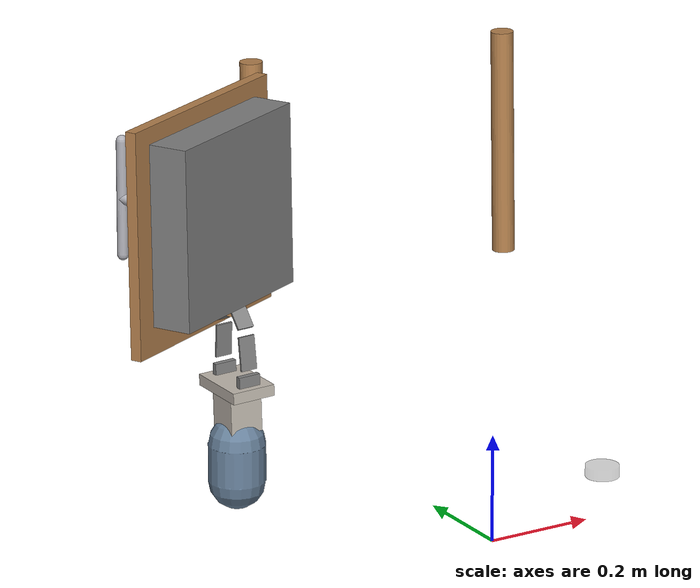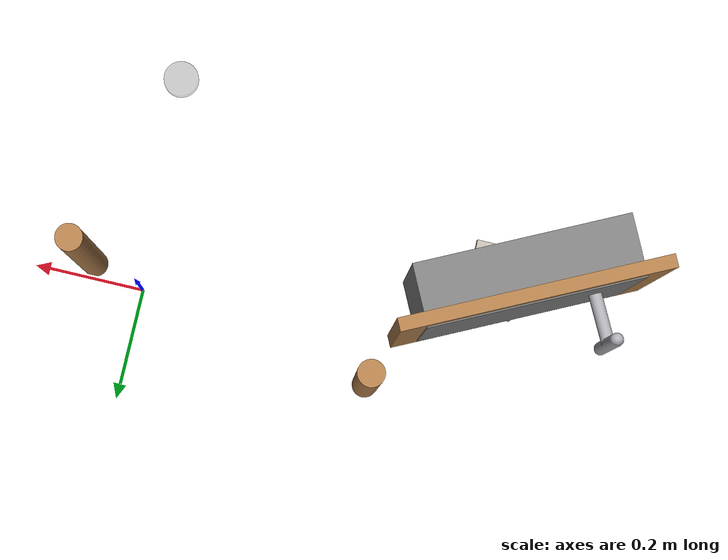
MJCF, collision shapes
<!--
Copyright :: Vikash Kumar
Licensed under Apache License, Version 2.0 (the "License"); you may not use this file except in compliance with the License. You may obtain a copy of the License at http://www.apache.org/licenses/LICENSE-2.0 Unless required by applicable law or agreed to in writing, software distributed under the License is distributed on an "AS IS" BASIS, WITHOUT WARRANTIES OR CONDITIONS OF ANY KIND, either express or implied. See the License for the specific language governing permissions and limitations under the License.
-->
<mujoco model='ADROIT-door(v1.5)'>

    <!-- ======= WORLD ======= -->
    <worldbody>
        <light directional='false' diffuse='.7 .7 .7' specular='0.03 0.03 0.03' pos='-1 -1.0 4.0' dir='1 1.0 -4'/>
        <camera name="fixed" pos="0.9 -0.7 0.7" quat="0.92388 0.382683 0 0" />
        <!-- Camera for the VIL paper -->
        <camera name="vil_camera" pos="0 -1.2 1.2" quat="0.92388 0.382683 0 0" />

        <!-- ======= MOCAP ======= -->
        <body name="vive_tracker" pos="0 -0.35 0.25" mocap="true">
            <inertial pos="0 0 0" mass="0.064" diaginertia="1.70667e-05 1.70667e-05 1.70667e-05" />
            <geom size="0.03 0.01" type="cylinder" contype="0" conaffinity="0" group="3" rgba="0.3 0.3 0.3 0.3" />
        </body>

        <!-- ======= HAND ======= -->
        <body name="forearm" pos="-0.59 -0.11 0.015" euler="0 0 0">
            <inertial pos="0 0 0" mass="0.4" />
            <joint name="ARRz" pos="0 0 0" axis="0 0 -1" range="0 100" damping="100" stiffness="100" armature="1"/>
            <joint name="slide_down" pos="0 0 0" axis="0 0 1" type="slide" range="-0.07 0" damping="100" stiffness="100" armature="1" springref="0.2"/>
            <geom name="V_forearm" class="D_Vizual" pos="0 -.01 .181" euler="0 0 -1.57"  mesh="forearm_simple" />
            <geom name="C_forearm1" class="DC_Hand" size="0.05 0.033" pos="0 0 0.29" type="capsule" rgba="0.4 0.5 0.6 0.1" />

            <!-- ======= Adroit ======= -->
            <include file="wrench_model.xml"/>
        </body>

        <!-- ======= Satellite ======= -->
        <body name="satelite" pos="0.2 0.97 -0.9" euler="2.33 4.6 3.14" >
            <inertial pos="-0.207339 0.1435293 0.547376" quat="0.982037 -0.0160006 0 -0.188007" mass="4" diaginertia="0.01 0.01 0.0075" />
            <geom name="Satellite" class="Satellite" pos="0 -.5 .2" euler="10 10 -11.57"  mesh="Satellite" size="0.05 0.25"/>

            <body name="frame" pos="-0.107339 0.0435293 0.447376" user="1001 0 2002 -0.4 -0.1 0.252 0 0.3 0.45" axisangle="0 0 1 -0.8">
            <geom size="0.02 0.2" pos="1.68 -0.88 0.23" type="cylinder" material="MatWood" euler="-0.1 4.63 0"/>
            <geom size="0.02 0.2" pos="1.72 -0.93 -0.23" type="cylinder" material="MatWood" euler="-0.1 4.63 0"/>
            <body name="door" pos="1.7 -0.9 0" euler="-0.1 4.63 0">
                <body name="door_main" pos="0.4 -0.2 0" euler="0 0 2.5">
                <geom size="0.2 0.01 0.2" type="box" friction="1 1 1" material="MatWood" />
                <body name="latch" pos="-0.2 0.05 -0.025" euler="0.15 0 0">
                    <inertial pos="-0.017762 0.0138544 0" quat="0.365653 0.605347 -0.36522 0.605365" mass="3.53743" diaginertia="0.0483771 0.0410001 0.0111013" />

                   <geom size="0.01 0.06" pos="0.1 -0.08 0" quat="0.707388 0.706825 0 0" type="cylinder" material="MatFoil" />
                    <geom size="0.01 0.1" pos="0.1 -0.14 0" quat="0.707388 10 0.706825 0" type="capsule" material="MatFoil" />
                    <geom size="0.01 0.05" pos="0.1 -0.03 0" quat="0.707388 0 0.706825 0" type="capsule" material="MatFoil" />

                </body>
                    <body name="battery" pos="0 0.035 -0.01" euler="0 0 0">
                    <geom size="0.16 0.047 0.16" type="box" friction="1 1 1" rgba="0.5 0.5 0.5 0.5" />
                    <body pos="0 0.031 0">
                        <geom pos="0 0 0.14" euler="0.015 0 0" class="bolt" mesh="bolt" name="bolt"/>
                        <site name="bolt" pos="0 0.001 0.17" size="0.01 0 0" group='3' />
                        <body euler="0 0 -0.09" name="nut">
                            <site name="S_nut" pos="0 0 0.17" size="0.015 0 0" group='3' rgba="1 0 0 1"/>
                            <geom name="nut" pos="0 0 0.15" euler="0 0 0" class="nut" mesh="nut" contype="1" friction="-1 1 1"/>
                            <joint name="nut_around" pos="0 0 0" axis="0 0 1" type="hinge" range="0 19" damping="0.05" stiffness="0" />
                            <joint name="nut_downwards" pos="0 0 0" axis="0 0 1" type="slide" range="0 0.1" damping="1" stiffness="1" springref="-1"/>

                        </body>
                    </body>
                </body>
            </body>
                </body>
        </body>

            <!-- ======= Adroit ======= -->
            <include file="../../HST.xml"/>
        </body>
    </worldbody>

    <actuator>
        <general name="A_ARRz" joint="ARRz" ctrlrange="0 30" biastype="affine" gainprm="200 0 0" biasprm="0 -200 0" />

    </actuator>

    <equality>
        <joint name="connected_joints" active="true" joint1="nut_around" joint2="nut_downwards" polycoef="0 300 1 0 0" />
    </equality>

    <include file='wrench_assets.xml'/>

</mujoco>

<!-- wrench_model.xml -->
<mujocoinclude>
    <body name="wrist" pos="0 0 0.396">
        <inertial pos="0.003 0 0.016" quat="0.504234 0.49623 0.49523 0.504234" mass="0.3" diaginertia="0.001 0.001 0.001" />
        <geom name="V_wrist" class="D_Vizual" mesh="wrist" />
        <geom name="C_wrist" class="DC_Hand" size="0.015 0.01" quat="0.707107 0.707107 0 0" type="capsule" rgba="0.4 0.5 0.6 0.1" />
        <body name="palm" pos="0 0 0.034">
            <inertial pos="0.006 0 0.036" quat="0.715833 0.0439898 0.0749825 0.692839" mass="0.3" diaginertia="0.001 0.001 0.001" />
            <site name="S_grasp"  type="sphere" size="0.01" pos=".007 -.05 0.07" quat="0.0087 -0.6 -0.0034 -0.81  " rgba="0 0 0 0"/>

            <body pos="0 0 0.01" euler="0 -1.6 0">
                <!-- GRIPPER BASE-->
                <site name="sBase" pos="0.01 0 0" size="0.005 0 0" rgba="0 0 0 0"/>
                <geom class="base" size="0.058 0.04 0.01" pos="-0.01 0 0"/>
                <geom size="0.04 0.03 0.03" pos="-0.05 0 0" type="box" class="Silver"/>
                <!-- FINGERS LEFT -->
                <body pos="0 0.74 0" >
                    <body pos="0.01 -0.7 0">
                        <geom class="gripper_sticks_main" name="g121" />
                        <body pos="0.05 0 0" euler="0 0 -0.1">
                            <geom class="gripper_sticks_middle" name="g122"/>
                            <joint name="gripper_right" range="-0.1 1" limited="true" stiffness="100" springref="0"/>
                            <site name="s_gripper_right" pos="0 -0.08 0" size="0.005 0 0" rgba="0 0 0 0"/>
                            <body pos="0.06 -0.01 0" name="gripper_right_top" euler="0 0 -0.05">
                                <geom class="gripper_sticks_end" name="gripper_right_top" quat="0.2 0 0 1" />
                                <site name="s_gripper_right_top" pos="0 0 0" type="box" size="0.02 0.002 0.015" rgba="0 0 0 0" euler="0 0 -0.45"/>
                            </body>
                        </body>
                    </body>
                </body>

                <!-- FINGER RIGHT -->
                <body pos="0 0.66 0">
                    <body pos="0.01 -0.7 0">
                        <geom class="gripper_sticks_main" name="g21"/>
                        <body pos="0.05 0 0" euler="0 0 0.1">
                            <geom class="gripper_sticks_middle" name="g22" solimp="2 2"/>
                            <joint name="gripper_left" range="-1 0.1" limited="true" stiffness="100" springref="0"/>
                            <site name="s_gripper_left" pos="0 0.08 0" size="0.005 0 0" rgba="0 0 0 0"/>
                            <body pos="0.06 0.01 0" name="gripper_left_top" euler="0 0 0.05">
                                <geom class="gripper_sticks_end" name="gripper_left_top" quat="-0.3 0 0 1"/>
                                <site name="s_gripper_left_top" pos="0 0 0" type="box" size="0.02 0.002 0.015" rgba="0 0 0 0" euler="0 0 0.6"/>
                            </body>
                        </body>
                    </body>
                </body>
            </body>
        </body>
    </body>
</mujocoinclude>

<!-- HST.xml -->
<mujocoinclude>
    <body name="Satellite" pos="0 0.7 0.396">
        <inertial pos="0.003 0 0.016" quat="0.504234 0.49623 0.49523 0.504234" mass="0.3" diaginertia="0.001 0.001 0.001" />

    </body>
</mujocoinclude>

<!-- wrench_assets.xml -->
<mujocoinclude>
     <compiler angle="radian" meshdir='../../resources/meshes/' texturedir='../../resources/textures/' />
    <option apirate="200" iterations="20" noslip_iterations="20"/>
    <size njmax="500" nconmax="100" nstack="600000" nuser_body="9" nuser_jnt="1" nuser_site="1" nuser_tendon="1" nuser_actuator="16" nuser_sensor="1" />
    <visual>
        <global offwidth="3024" offheight="1680" />
        <quality shadowsize="4096" offsamples="8" />
        <map force="0.1" fogend="5" />
    </visual>
    <default class="main">
        <mesh scale="0.001 0.001 0.001" />
        <joint limited="true" margin="0.001" armature="0.001" damping="0.05" frictionloss="0.001" />
        <geom friction="1 0.5 0.01" margin="0.0005" />
        <site size="0.005 0 0" rgba="0.4 0.9 0.4 1" />
        <tendon limited="true" />
        <general ctrllimited="true" ctrlrange="-1 1" user="0 1 0.03 0.0939711 0.513477 0.0358776 1.23598 8.40409 0.485031 6.04244 1.02187 0.175297 0.121642 0 0 0" />
        <default class="D_Touch">
            <site size="0.009 0.004 0.013" group="4" type="box" rgba="0.8 0.8 0.8 0.15" />
            <general user="0 1 0.03 0.0939711 0.513477 0.0358776 1.23598 8.40409 0.485031 6.04244 1.02187 0.175297 0.121642 0 0 0" />
        </default>
        <default class="DC_Hand">
            <geom conaffinity="0" group="4" material="MatColl" />
            <general user="0 1 0.03 0.0939711 0.513477 0.0358776 1.23598 8.40409 0.485031 6.04244 1.02187 0.175297 0.121642 0 0 0" />
        </default>
        <default class="D_Vizual">
            <geom type="mesh" contype="0" conaffinity="0" group="1" material="MatViz" />
            <general user="0 1 0.03 0.0939711 0.513477 0.0358776 1.23598 8.40409 0.485031 6.04244 1.02187 0.175297 0.121642 0 0 0" />
        </default>
        <default class="Satellite">
            <geom type="mesh" contype="0" conaffinity="0" group="1" material="MatWood" />
            <general user="0 1 0.03 0.0939711 0.513477 0.0358776 1.23598 8.40409 0.485031 6.04244 1.02187 0.175297 0.121642 0 0 0" />
        </default>
        <default class="bolt">
            <geom type="mesh" contype="0" conaffinity="0" group="1" material="MatWood" />
            <general user="0 1 0.03 0.0939711 0.513477 0.0358776 1.23598 8.40409 0.485031 6.04244 1.02187 0.175297 0.121642 0 0 0" />
        </default>
        <default class="nut">
            <geom type="mesh" contype="0" conaffinity="0" group="1" material="MatWood" />
            <general user="0 1 0.03 0.0939711 0.513477 0.0358776 1.23598 8.40409 0.485031 6.04244 1.02187 0.175297 0.121642 0 0 0" />
        </default>
    </default>
    <asset>
        <texture type="cube" name="texgeom" builtin="flat" mark="cross" rgb1="0.3 0.6 0.5" rgb2="0.3 0.6 0.5" width="127" height="762" />
        <texture type="cube" name="metal" file="metal.png" />
        <texture type="cube" name="dark_metal" file="dark_metal.png" />
        <texture type="2d" name="wood2d" file="metal.png" />
        <texture type="cube" name="square" file="square.png" />
        <texture type="cube" name="foil" file="silverRaw.png" />
        <texture type="cube" name="woodb" file="metal.png" />
        <texture type="2d" name="groundplane" builtin="checker" rgb1="0.2 0.3 0.4" rgb2="0.1 0.2 0.3" width="100" height="100" />
        <texture type="2d" name="marble2d" file="marble.png" />
        <texture type="cube" name="marblecube" file="marble.png" />
        <material name="MatColl" specular="1" shininess="0.3" reflectance="0.5" rgba="0.4 0.5 0.6 1" />
        <material name="MatViz" specular="0.75" shininess="0.1" reflectance="0.5" texture="dark_metal" />
        <material name="MatGnd" specular="0.3" shininess="0.3" reflectance="0.3" rgba="0.5 0.55 0.5 1" />
        <material name="object" texture="texgeom" />
        <material name="groundplane" texture="groundplane" texrepeat="10 10" />
        <material name="table2d" texture="marble2d" reflectance="0.3" rgba="0.8 0.8 0.8 1" />
        <material name="tablecube" texture="marblecube" rgba="0.8 0.8 0.8 1" />
        <material name="MatFoil" texture="foil" specular="1" shininess="0.3" rgba="0.9 0.9 0.9 1" />
        <material name="MatPlane" specular="0.3" shininess="0.3" rgba="0.3 0.3 0.2 1" />
        <material name="MatWood" texture="metal" texrepeat="3 3" specular="0.4" shininess="0.1" />
        <material name="MatSquare" texture="square" specular="1" shininess="0.6" rgba="0.8 0.8 0.8 1" />
        <material name="MatWoodR" texture="metal" specular="1" shininess="0.3" rgba="1 0.5 0.5 1" />
        <material name="MatWoodG" texture="metal" specular="1" shininess="0.3" rgba="0.2 1 0.2 1" />
        <material name="MatWoodB" texture="woodb" specular="1" shininess="0.3" />
        <mesh name="forearm_simple" file="forearm_simple.stl" scale="1 1 1"/>
        <mesh name="wrist" file="wrist.stl" />
        <mesh name="palm" file="palm.stl" />
        <mesh name="lfmetacarpal" file="lfmetacarpal.stl" />
        <mesh name="knuckle" file="knuckle.stl" />
        <mesh name="TH3_z" file="TH3_z.stl" />
        <mesh name="TH2_z" file="TH2_z.stl" />
        <mesh name="TH1_z" file="TH1_z.stl" />
        <mesh name="Satellite" file="HST2.stl" scale="0.3 0.3 0.3" />
        <mesh name="bolt" file="factory_bolt_m4_loose.stl" scale="4 4 4"/>
        <mesh name="nut" file="factory_nut_m4_loose_subdiv_3x.stl" scale="3.5 3.5 3.5"/>

        <material name="floor_mat" specular="0" shininess="0.5" reflectance="0" rgba="0.2 0.2 0.2 1"/>
        <material name="table_mat" specular="0" shininess="0.5" reflectance="0" rgba="0.93 0.93 0.93 1"/>
        <material name="block_mat" specular="0" shininess="0.5" reflectance="0" rgba="0.2 0.2 0.2 1"/>
        <material name="puck_mat" specular="0" shininess="0.5" reflectance="0" rgba="0.2 0.2 0.2 1"/>
        <material name="robot0:geomMat" shininess="0.03" specular="0.4"/>
        <material name="robot0:gripper_finger_mat" shininess="0.03" specular="0.4" reflectance="0"/>
        <material name="robot0:gripper_mat" shininess="0.03" specular="0.4" reflectance="0"/>
        <material name="robot0:arm_mat" shininess="0.03" specular="0.4" reflectance="0"/>
        <material name="robot0:head_mat" shininess="0.03" specular="0.4" reflectance="0"/>
        <material name="robot0:torso_mat" shininess="0.03" specular="0.4" reflectance="0"/>
        <material name="robot0:base_mat" shininess="0.03" specular="0.4" reflectance="0"/>

        <mesh file="base_link_collision.stl" name="robot0:base_link" scale="0.3 0.3 0.3"/>
        <mesh file="bellows_link_collision.stl" name="robot0:bellows_link" scale="0.3 0.3 0.3"/>
        <mesh file="elbow_flex_link_collision.stl" name="robot0:elbow_flex_link" scale="0.5 0.5 0.5"/>
        <mesh file="estop_link.stl" name="robot0:estop_link" scale="0.3 0.3 0.3"/>
        <mesh file="forearm_roll_link_collision.stl" name="robot0:forearm_roll_link" scale="0.5 0.5 0.5"/>
        <mesh file="gripper_link.stl" name="robot0:gripper_link" scale="1 0.3 0.5"/>
        <mesh file="head_pan_link_collision.stl" name="robot0:head_pan_link" scale="0.3 0.3 0.3"/>
        <mesh file="head_tilt_link_collision.stl" name="robot0:head_tilt_link" scale="0.3 0.3 0.3"/>
        <mesh file="l_wheel_link_collision.stl" name="robot0:l_wheel_link" scale="0.3 0.3 0.3"/>
        <mesh file="laser_link.stl" name="robot0:laser_link" scale="0.3 0.3 0.3"/>
        <mesh file="r_wheel_link_collision.stl" name="robot0:r_wheel_link" scale="0.3 0.3 0.3"/>
        <mesh file="torso_lift_link_collision.stl" name="robot0:torso_lift_link" scale="0.3 0.3 0.3"/>
        <mesh file="shoulder_pan_link_collision.stl" name="robot0:shoulder_pan_link" scale="0.5 0.5 0.5"/>
        <mesh file="shoulder_lift_link_collision.stl" name="robot0:shoulder_lift_link" scale="0.5 0.5 0.5"/>
        <mesh file="upperarm_roll_link_collision.stl" name="robot0:upperarm_roll_link" scale="0.5 0.5 0.5"/>
        <mesh file="wrist_flex_link_collision.stl" name="robot0:wrist_flex_link" scale="0.5 0.5 0.5" />
        <mesh file="wrist_roll_link_collision.stl" name="robot0:wrist_roll_link" scale="0.3 0.3 0.3"/>
        <mesh file="torso_fixed_link.stl" name="robot0:torso_fixed_link" scale="0.3 0.3 0.3"/>
    </asset>

    <contact>
        <pair geom1="gripper_right_top" geom2="nut" solimp=".999 .999 .001" solref="0.001 1"></pair>
        <pair geom1="gripper_left_top" geom2="nut" solimp=".999 .999 .001" solref="0.001 1"></pair>

        <pair geom1="gripper_right_top" geom2="bolt" solimp=".999 .999 .001" solref="0.001 1"></pair>
        <pair geom1="gripper_left_top" geom2="bolt" solimp=".999 .999 .001" solref="0.001 1"></pair>

    </contact>

     <option noslip_iterations="10" noslip_tolerance="0">
         <flag multiccd="enable"/>
     </option>

     <sensor>
         <touch site="S_nut"/>
         <touch site="s_gripper_left_top"/>
         <touch site="s_gripper_right_top"/>
     </sensor>

<default class="robot0:fetch">

            <default class="robot0:grey">
                <geom rgba="0.356 0.361 0.376 1.0"></geom>
            </default>
            <default class="robot0:blue">
                <geom rgba="0.086 0.506 0.767 1.0"></geom>
            </default>
            <default class="robot0:white">
                <geom rgba="0.8 0.8 0.8 1"></geom>
            </default>

            <default class="Silver">
                <geom material="MatViz" />
            </default>

<!--            soft gripper-->
            <!-- CHANGE HERE-->
        <!-- All changes rearding joint dynamics, box sizes, etc. can be adjusted from here! Digging
        In XML is not advised/-->
        <default class="gripper_sticks_main">
            <geom type="box" size="0.01 0.005 0.02" mass="0.1" contype="1" conaffinity="1"/>
        </default>
        <default class="gripper_sticks_middle">
            <geom type="box" size="0.03 0.002 0.015" mass="0.2" contype="1" conaffinity="1"/>
        </default>
        <default class="gripper_sticks_end">
            <geom type="box" size="0.02 0.002 0.015" mass="0.1" contype="1" conaffinity="1"/>
        </default>

        <default class="base">
            <geom type="box" quat="0.7 0.7 0.7 0.7" material="MatViz"/>
        </default>
        </default>
 </mujocoinclude>
